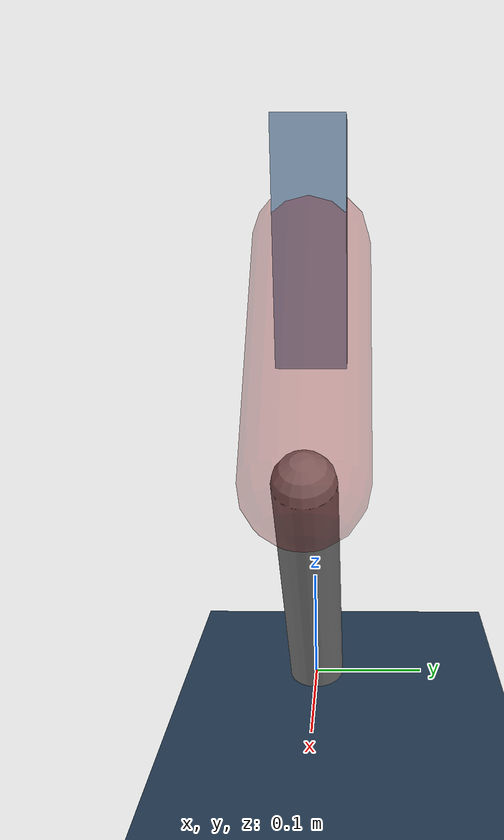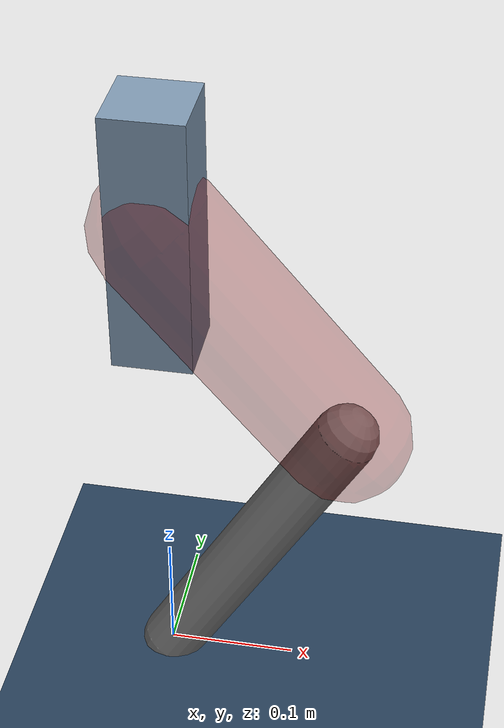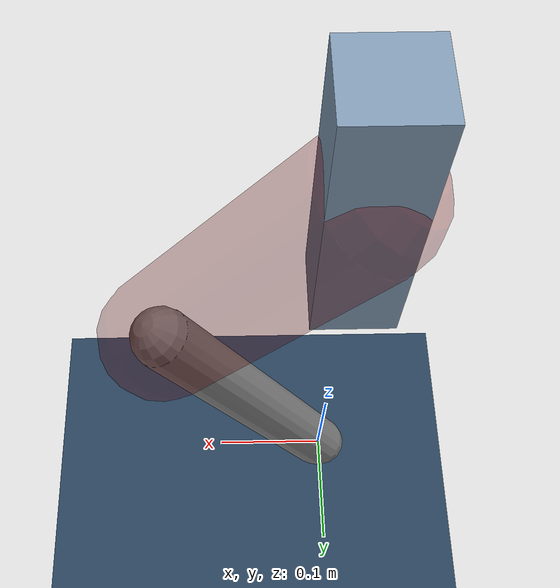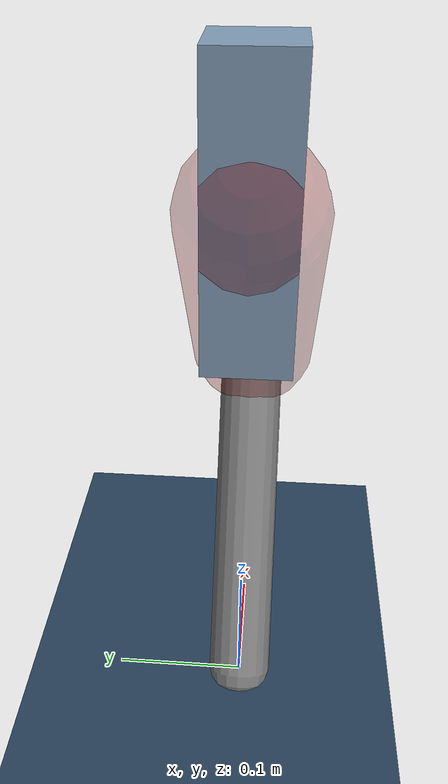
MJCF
<mujoco model="Hopper2D">
	<compiler inertiafromgeom="true" angle="radian" />
	<option timestep="0.001" integrator="implicit" cone="elliptic" solver="Newton" tolerance="1e-10" />

	<default>
		<geom contype="1" conaffinity="1" condim="3" friction="2 0.005 0.0001" solref="0.005 1" />
		<joint limited="true" damping="0.1" />
	</default>

	<asset>
		<texture name="skybox" type="skybox" builtin="gradient" rgb1=".4 .6 .8" rgb2="0 0 0" width="800" height="800" />
		<texture name="grid" type="2d" builtin="checker" rgb1=".1 .2 .3" rgb2=".2 .3 .4" width="300" height="300" mark="edge" markrgb=".2 .3 .4" />
		<material name="ground" texture="grid" texrepeat="1 1" texuniform="true" reflectance="0.1" />
		<material name="leg" rgba="0.5 0.6 0.7 1" />
	</asset>

	<worldbody>

		<geom name="floor" type="plane" size="5 5 0.25" material="ground" />

		<light directional="false" diffuse="0.8 0.8 0.8" specular="0.3 0.3 0.3" pos="0 0 2" dir="0 0 -1" />
		<light mode="targetbodycom" target="base" directional="false" diffuse="0.8 0.8 0.8" specular="0.3 0.3 0.3" pos="0 0 2" dir="0 0 -1" />

		<camera name="fixed" pos="0 -2 1" xyaxes="1 0 0 0 0 1" />
		<camera name="tracking" mode="trackcom" pos="0 -3 1" />

		<body name="root" pos="0 0 0.4022898042872104">
			<joint name="slide_x" type="slide" axis="1 0 0" range="-100 100" />
			<joint name="slide_z" type="slide" axis="0 0 1" range="0 10" />

			<body name="base" pos="0 0 0">
				<geom name="torso" type="box" size="0.03 0.03 0.1" mass="2.48" material="leg" />

				<body name="link1" pos="0 0 0" euler="0 0.8721937515416872 0">
					<joint type="hinge" axis="0 -1 0" pos="0 0 0" name="hinge1" limited="true" range="-3.14 3.14" stiffness="0" damping="0.1" />
					<geom name="thigh" type="capsule" fromto="0 0 0 0.21635405141065564 0 0" size="0.05" rgba="0.5 0 0 0.3" mass="0.7704851285266391" />

					<body name="link2" pos="0.21635405141065564 0 0" euler="0 1.2302022457965265 0">
						<joint type="hinge" axis="0 -1 0" pos="0 0 0" name="hinge2" limited="true" range="-3.14 3.14" stiffness="0" damping="0.1" />
						<geom name="shank" type="capsule" fromto="0 0 0 0.274500272396751 0 0" size="0.025" mass="0.4626002179174008" />

					</body>
				</body>
			</body>
		</body>
	</worldbody>

	<actuator>
		<motor name="torque1" joint="hinge1" ctrlrange="-88.54062801583675 88.54062801583675" ctrllimited="true" gear="1" />
		<motor name="torque2" joint="hinge2" ctrlrange="-32.25931278356528 32.25931278356528" ctrllimited="true" gear="1" />
	</actuator>
</mujoco>
